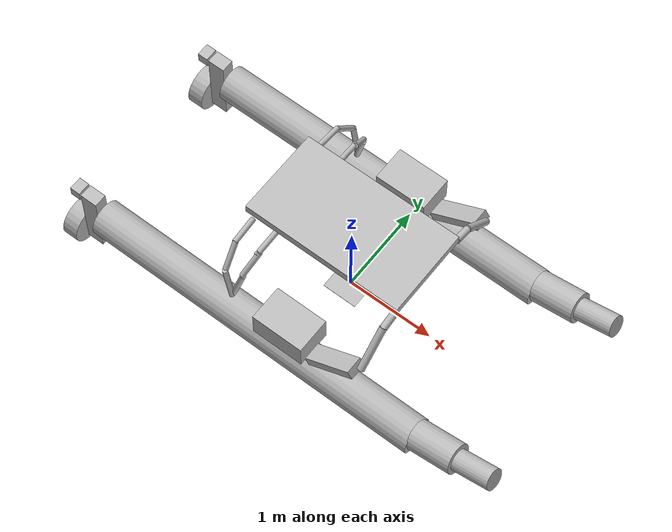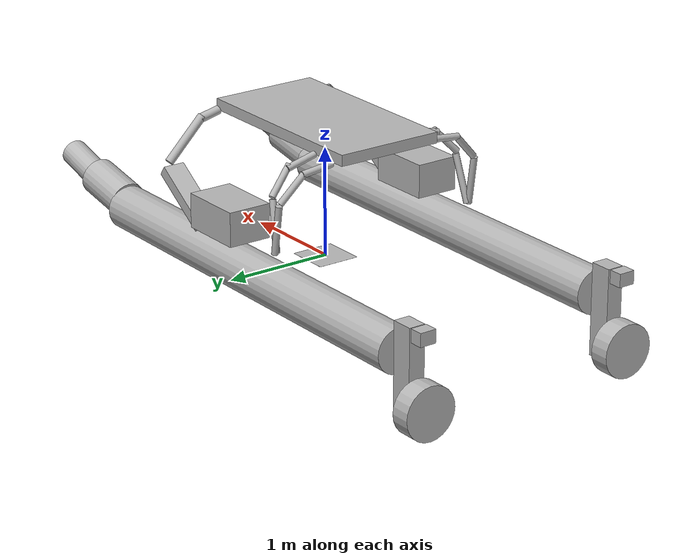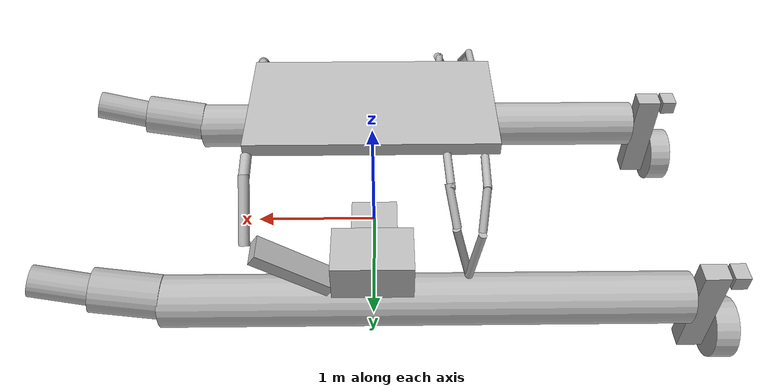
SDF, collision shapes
<sdf version="1.7">
 <model name="QR_wamv">
  <link name="wamv/base_link">
   <inertial>
    <pose>0 0 0.124229 0 -0 0</pose>
    <mass>227</mass>
    <inertia><ixx>181.42</ixx><ixy>0</ixy><ixz>0</ixz><iyy>408.203</iyy><iyz>0</iyz><izz>495.037</izz></inertia>
   </inertial>
   <visual name="wamv/base_link_fixed_joint_lump__left_battery_visual_visual_1">
    <pose>0 -0.03 0 0 -0 0</pose>
    <geometry><mesh><scale>1 1 1</scale><uri>model://battery/mesh/battery.dae</uri></mesh></geometry>
    <material><shader type="pixel"/></material>
   </visual>
   <visual name="wamv/base_link_fixed_joint_lump__right_battery_visual_visual_2">
    <pose>0 -2.03 0 0 -0 0</pose>
    <geometry><mesh><scale>1 1 1</scale><uri>model://battery/mesh/battery.dae</uri></mesh></geometry>
    <material><shader type="pixel"/></material>
   </visual>
   <visual name="wamv/base_link_fixed_joint_lump__wamv/dummy_link_visual">
    <geometry>
     <mesh>
      <scale>1 1 1</scale>
      <uri>/home/grant/vrx_ws/src/adept-vrx/wamv_description/models/WAM-V-Base/mesh/WAM-V-Base.dae</uri>
     </mesh>
    </geometry>
    <material><shader type="pixel"/></material>
   </visual>
   <visual name="wamv/base_link_fixed_joint_lump__qrcode1_visual_1">
    <pose>-.4 0 1.3 0 0 0</pose>
    <geometry><plane><normal>0 0 1</normal><size>.4 .4</size></plane></geometry>
    <material>
     <script>
      <uri>/home/grant/vrx_ws/src/adept-vrx/wamv_description/materials/scripts/gazebo.material</uri>
      <name>Gazebo/Aruco129</name>
     </script>
     <shader type="pixel"/>
    </material>
    <cast_shadows>0</cast_shadows>
   </visual>
   <visual name="wamv/base_link_fixed_joint_lump__qrcode2_visual_2">
    <pose>.2 0 1.3 0 0 0</pose>
    <geometry><plane><normal>0 0 1</normal><size>.2 .2</size></plane></geometry>
    <material>
     <script>
      <uri>/home/grant/vrx_ws/src/adept-vrx/wamv_description/materials/scripts/gazebo.material</uri>
      <name>Gazebo/Aruco72</name>
     </script>
     <shader type="pixel"/>
    </material>
    <cast_shadows>0</cast_shadows>
   </visual>
   <collision name="wamv/base_link_fixed_joint_lump__qrcode2_collision_28">
    <geometry><plane><normal>0 0 1</normal><size>.2 .2</size></plane></geometry>
    <surface>
     <friction>
      <ode><mu>1</mu><mu2>1</mu2><fdir1>0 0 0</fdir1><slip1>0</slip1><slip2>0</slip2></ode>
      <torsional>
       <coefficient>1</coefficient>
       <patch_radius>0</patch_radius>
       <surface_radius>0</surface_radius>
       <use_patch_radius>1</use_patch_radius>
       <ode><slip>0</slip></ode>
      </torsional>
     </friction>
     <bounce><restitution_coefficient>0</restitution_coefficient><threshold>1e+06</threshold></bounce>
     <contact>
      <collide_without_contact>0</collide_without_contact>
      <collide_without_contact_bitmask>1</collide_without_contact_bitmask>
      <collide_bitmask>1</collide_bitmask>
      <ode>
       <soft_cfm>0</soft_cfm>
       <soft_erp>0.2</soft_erp>
       <kp>1e+13</kp>
       <kd>1</kd>
       <max_vel>0.01</max_vel>
       <min_depth>0</min_depth>
      </ode>
      <bullet>
       <split_impulse>1</split_impulse>
       <split_impulse_penetration_threshold>-0.01</split_impulse_penetration_threshold>
       <soft_cfm>0</soft_cfm>
       <soft_erp>0.2</soft_erp>
       <kp>1e+13</kp>
       <kd>1</kd>
      </bullet>
     </contact>
    </surface>
   </collision>
   <collision name="wamv/base_link_fixed_joint_lump__qrcode1_collision_27">
    <geometry><plane><normal>0 0 1</normal><size>.4 .4</size></plane></geometry>
    <surface>
     <friction>
      <ode><mu>1</mu><mu2>1</mu2><fdir1>0 0 0</fdir1><slip1>0</slip1><slip2>0</slip2></ode>
      <torsional>
       <coefficient>1</coefficient>
       <patch_radius>0</patch_radius>
       <surface_radius>0</surface_radius>
       <use_patch_radius>1</use_patch_radius>
       <ode><slip>0</slip></ode>
      </torsional>
     </friction>
     <bounce><restitution_coefficient>0</restitution_coefficient><threshold>1e+06</threshold></bounce>
     <contact>
      <collide_without_contact>0</collide_without_contact>
      <collide_without_contact_bitmask>1</collide_without_contact_bitmask>
      <collide_bitmask>1</collide_bitmask>
      <ode>
       <soft_cfm>0</soft_cfm>
       <soft_erp>0.2</soft_erp>
       <kp>1e+13</kp>
       <kd>1</kd>
       <max_vel>0.01</max_vel>
       <min_depth>0</min_depth>
      </ode>
      <bullet>
       <split_impulse>1</split_impulse>
       <split_impulse_penetration_threshold>-0.01</split_impulse_penetration_threshold>
       <soft_cfm>0</soft_cfm>
       <soft_erp>0.2</soft_erp>
       <kp>1e+13</kp>
       <kd>1</kd>
      </bullet>
     </contact>
    </surface>
   </collision>
   <collision name="wamv/base_link_fixed_joint_lump__left_float_collision">
    <pose>-0.4 1.03 0.2 3.14159 1.57079 3.14159</pose>
    <geometry><cylinder><radius>0.2</radius><length>4</length></cylinder></geometry>
    <surface>
     <friction>
      <ode><mu>1</mu><mu2>1</mu2><fdir1>0 0 0</fdir1><slip1>0</slip1><slip2>0</slip2></ode>
      <torsional>
       <coefficient>1</coefficient>
       <patch_radius>0</patch_radius>
       <surface_radius>0</surface_radius>
       <use_patch_radius>1</use_patch_radius>
       <ode><slip>0</slip></ode>
      </torsional>
     </friction>
     <bounce><restitution_coefficient>0</restitution_coefficient><threshold>1e+06</threshold></bounce>
     <contact>
      <collide_without_contact>0</collide_without_contact>
      <collide_without_contact_bitmask>1</collide_without_contact_bitmask>
      <collide_bitmask>1</collide_bitmask>
      <ode>
       <soft_cfm>0</soft_cfm>
       <soft_erp>0.2</soft_erp>
       <kp>1e+13</kp>
       <kd>1</kd>
       <max_vel>0.01</max_vel>
       <min_depth>0</min_depth>
      </ode>
      <bullet>
       <split_impulse>1</split_impulse>
       <split_impulse_penetration_threshold>-0.01</split_impulse_penetration_threshold>
       <soft_cfm>0</soft_cfm>
       <soft_erp>0.2</soft_erp>
       <kp>1e+13</kp>
       <kd>1</kd>
      </bullet>
     </contact>
    </surface>
   </collision>
   <collision name="wamv/base_link_fixed_joint_lump__left_front_float_collision_2">
    <pose>2.3 1.03 0.4 0 1.3 0</pose>
    <geometry><cylinder><radius>0.12</radius><length>0.45</length></cylinder></geometry>
    <surface>
     <friction>
      <ode><mu>1</mu><mu2>1</mu2><fdir1>0 0 0</fdir1><slip1>0</slip1><slip2>0</slip2></ode>
      <torsional>
       <coefficient>1</coefficient>
       <patch_radius>0</patch_radius>
       <surface_radius>0</surface_radius>
       <use_patch_radius>1</use_patch_radius>
       <ode><slip>0</slip></ode>
      </torsional>
     </friction>
     <bounce><restitution_coefficient>0</restitution_coefficient><threshold>1e+06</threshold></bounce>
     <contact>
      <collide_without_contact>0</collide_without_contact>
      <collide_without_contact_bitmask>1</collide_without_contact_bitmask>
      <collide_bitmask>1</collide_bitmask>
      <ode>
       <soft_cfm>0</soft_cfm>
       <soft_erp>0.2</soft_erp>
       <kp>1e+13</kp>
       <kd>1</kd>
       <max_vel>0.01</max_vel>
       <min_depth>0</min_depth>
      </ode>
      <bullet>
       <split_impulse>1</split_impulse>
       <split_impulse_penetration_threshold>-0.01</split_impulse_penetration_threshold>
       <soft_cfm>0</soft_cfm>
       <soft_erp>0.2</soft_erp>
       <kp>1e+13</kp>
       <kd>1</kd>
      </bullet>
     </contact>
    </surface>
   </collision>
   <collision name="wamv/base_link_fixed_joint_lump__front_left_beam_upper_collision_4">
    <pose>0.9 0.6 1.18 1.35 -0 0</pose>
    <geometry><cylinder><radius>0.04</radius><length>0.2</length></cylinder></geometry>
    <surface>
     <friction>
      <ode><mu>1</mu><mu2>1</mu2><fdir1>0 0 0</fdir1><slip1>0</slip1><slip2>0</slip2></ode>
      <torsional>
       <coefficient>1</coefficient>
       <patch_radius>0</patch_radius>
       <surface_radius>0</surface_radius>
       <use_patch_radius>1</use_patch_radius>
       <ode><slip>0</slip></ode>
      </torsional>
     </friction>
     <bounce><restitution_coefficient>0</restitution_coefficient><threshold>1e+06</threshold></bounce>
     <contact>
      <collide_without_contact>0</collide_without_contact>
      <collide_without_contact_bitmask>1</collide_without_contact_bitmask>
      <collide_bitmask>1</collide_bitmask>
      <ode>
       <soft_cfm>0</soft_cfm>
       <soft_erp>0.2</soft_erp>
       <kp>1e+13</kp>
       <kd>1</kd>
       <max_vel>0.01</max_vel>
       <min_depth>0</min_depth>
      </ode>
      <bullet>
       <split_impulse>1</split_impulse>
       <split_impulse_penetration_threshold>-0.01</split_impulse_penetration_threshold>
       <soft_cfm>0</soft_cfm>
       <soft_erp>0.2</soft_erp>
       <kp>1e+13</kp>
       <kd>1</kd>
      </bullet>
     </contact>
    </surface>
   </collision>
   <collision name="wamv/base_link_fixed_joint_lump__mid_right_beam_lower_collision_17">
    <pose>-0.65 -0.99 0.7 -0.1 0.25 0</pose>
    <geometry><cylinder><radius>0.03</radius><length>0.45</length></cylinder></geometry>
    <surface>
     <friction>
      <ode><mu>1</mu><mu2>1</mu2><fdir1>0 0 0</fdir1><slip1>0</slip1><slip2>0</slip2></ode>
      <torsional>
       <coefficient>1</coefficient>
       <patch_radius>0</patch_radius>
       <surface_radius>0</surface_radius>
       <use_patch_radius>1</use_patch_radius>
       <ode><slip>0</slip></ode>
      </torsional>
     </friction>
     <bounce><restitution_coefficient>0</restitution_coefficient><threshold>1e+06</threshold></bounce>
     <contact>
      <collide_without_contact>0</collide_without_contact>
      <collide_without_contact_bitmask>1</collide_without_contact_bitmask>
      <collide_bitmask>1</collide_bitmask>
      <ode>
       <soft_cfm>0</soft_cfm>
       <soft_erp>0.2</soft_erp>
       <kp>1e+13</kp>
       <kd>1</kd>
       <max_vel>0.01</max_vel>
       <min_depth>0</min_depth>
      </ode>
      <bullet>
       <split_impulse>1</split_impulse>
       <split_impulse_penetration_threshold>-0.01</split_impulse_penetration_threshold>
       <soft_cfm>0</soft_cfm>
       <soft_erp>0.2</soft_erp>
       <kp>1e+13</kp>
       <kd>1</kd>
      </bullet>
     </contact>
    </surface>
   </collision>
   <collision name="wamv/base_link_fixed_joint_lump__mid_left_beam_lower_collision_5">
    <pose>-0.65 0.99 0.7 0.1 0.25 0</pose>
    <geometry><cylinder><radius>0.03</radius><length>0.45</length></cylinder></geometry>
    <surface>
     <friction>
      <ode><mu>1</mu><mu2>1</mu2><fdir1>0 0 0</fdir1><slip1>0</slip1><slip2>0</slip2></ode>
      <torsional>
       <coefficient>1</coefficient>
       <patch_radius>0</patch_radius>
       <surface_radius>0</surface_radius>
       <use_patch_radius>1</use_patch_radius>
       <ode><slip>0</slip></ode>
      </torsional>
     </friction>
     <bounce><restitution_coefficient>0</restitution_coefficient><threshold>1e+06</threshold></bounce>
     <contact>
      <collide_without_contact>0</collide_without_contact>
      <collide_without_contact_bitmask>1</collide_without_contact_bitmask>
      <collide_bitmask>1</collide_bitmask>
      <ode>
       <soft_cfm>0</soft_cfm>
       <soft_erp>0.2</soft_erp>
       <kp>1e+13</kp>
       <kd>1</kd>
       <max_vel>0.01</max_vel>
       <min_depth>0</min_depth>
      </ode>
      <bullet>
       <split_impulse>1</split_impulse>
       <split_impulse_penetration_threshold>-0.01</split_impulse_penetration_threshold>
       <soft_cfm>0</soft_cfm>
       <soft_erp>0.2</soft_erp>
       <kp>1e+13</kp>
       <kd>1</kd>
      </bullet>
     </contact>
    </surface>
   </collision>
   <collision name="wamv/base_link_fixed_joint_lump__right_joint_collision_23">
    <pose>0.58 -1.03 0.6 0 -0.6 0</pose>
    <geometry><box><size>0.65 0.2 0.1</size></box></geometry>
    <surface>
     <friction>
      <ode><mu>1</mu><mu2>1</mu2><fdir1>0 0 0</fdir1><slip1>0</slip1><slip2>0</slip2></ode>
      <torsional>
       <coefficient>1</coefficient>
       <patch_radius>0</patch_radius>
       <surface_radius>0</surface_radius>
       <use_patch_radius>1</use_patch_radius>
       <ode><slip>0</slip></ode>
      </torsional>
     </friction>
     <bounce><restitution_coefficient>0</restitution_coefficient><threshold>1e+06</threshold></bounce>
     <contact>
      <collide_without_contact>0</collide_without_contact>
      <collide_without_contact_bitmask>1</collide_without_contact_bitmask>
      <collide_bitmask>1</collide_bitmask>
      <ode>
       <soft_cfm>0</soft_cfm>
       <soft_erp>0.2</soft_erp>
       <kp>1e+13</kp>
       <kd>1</kd>
       <max_vel>0.01</max_vel>
       <min_depth>0</min_depth>
      </ode>
      <bullet>
       <split_impulse>1</split_impulse>
       <split_impulse_penetration_threshold>-0.01</split_impulse_penetration_threshold>
       <soft_cfm>0</soft_cfm>
       <soft_erp>0.2</soft_erp>
       <kp>1e+13</kp>
       <kd>1</kd>
      </bullet>
     </contact>
    </surface>
   </collision>
   <collision name="wamv/base_link_fixed_joint_lump__mid_left_beam_upper_collision_7">
    <pose>-0.55 0.65 1.17 1.35 0.25 0</pose>
    <geometry><cylinder><radius>0.03</radius><length>0.3</length></cylinder></geometry>
    <surface>
     <friction>
      <ode><mu>1</mu><mu2>1</mu2><fdir1>0 0 0</fdir1><slip1>0</slip1><slip2>0</slip2></ode>
      <torsional>
       <coefficient>1</coefficient>
       <patch_radius>0</patch_radius>
       <surface_radius>0</surface_radius>
       <use_patch_radius>1</use_patch_radius>
       <ode><slip>0</slip></ode>
      </torsional>
     </friction>
     <bounce><restitution_coefficient>0</restitution_coefficient><threshold>1e+06</threshold></bounce>
     <contact>
      <collide_without_contact>0</collide_without_contact>
      <collide_without_contact_bitmask>1</collide_without_contact_bitmask>
      <collide_bitmask>1</collide_bitmask>
      <ode>
       <soft_cfm>0</soft_cfm>
       <soft_erp>0.2</soft_erp>
       <kp>1e+13</kp>
       <kd>1</kd>
       <max_vel>0.01</max_vel>
       <min_depth>0</min_depth>
      </ode>
      <bullet>
       <split_impulse>1</split_impulse>
       <split_impulse_penetration_threshold>-0.01</split_impulse_penetration_threshold>
       <soft_cfm>0</soft_cfm>
       <soft_erp>0.2</soft_erp>
       <kp>1e+13</kp>
       <kd>1</kd>
      </bullet>
     </contact>
    </surface>
   </collision>
   <collision name="wamv/base_link_fixed_joint_lump__left_battery_collision_collision_25">
    <pose>0 1 0.6 0 -0 0</pose>
    <geometry><box><size>0.6 0.4 0.31</size></box></geometry>
    <surface>
     <friction>
      <ode><mu>1</mu><mu2>1</mu2><fdir1>0 0 0</fdir1><slip1>0</slip1><slip2>0</slip2></ode>
      <torsional>
       <coefficient>1</coefficient>
       <patch_radius>0</patch_radius>
       <surface_radius>0</surface_radius>
       <use_patch_radius>1</use_patch_radius>
       <ode><slip>0</slip></ode>
      </torsional>
     </friction>
     <bounce><restitution_coefficient>0</restitution_coefficient><threshold>1e+06</threshold></bounce>
     <contact>
      <collide_without_contact>0</collide_without_contact>
      <collide_without_contact_bitmask>1</collide_without_contact_bitmask>
      <collide_bitmask>1</collide_bitmask>
      <ode>
       <soft_cfm>0</soft_cfm>
       <soft_erp>0.2</soft_erp>
       <kp>1e+13</kp>
       <kd>1</kd>
       <max_vel>0.01</max_vel>
       <min_depth>0</min_depth>
      </ode>
      <bullet>
       <split_impulse>1</split_impulse>
       <split_impulse_penetration_threshold>-0.01</split_impulse_penetration_threshold>
       <soft_cfm>0</soft_cfm>
       <soft_erp>0.2</soft_erp>
       <kp>1e+13</kp>
       <kd>1</kd>
      </bullet>
     </contact>
    </surface>
   </collision>
   <collision name="wamv/base_link_fixed_joint_lump__left_joint_collision_11">
    <pose>0.58 1.03 0.6 0 -0.6 0</pose>
    <geometry><box><size>0.65 0.2 0.1</size></box></geometry>
    <surface>
     <friction>
      <ode><mu>1</mu><mu2>1</mu2><fdir1>0 0 0</fdir1><slip1>0</slip1><slip2>0</slip2></ode>
      <torsional>
       <coefficient>1</coefficient>
       <patch_radius>0</patch_radius>
       <surface_radius>0</surface_radius>
       <use_patch_radius>1</use_patch_radius>
       <ode><slip>0</slip></ode>
      </torsional>
     </friction>
     <bounce><restitution_coefficient>0</restitution_coefficient><threshold>1e+06</threshold></bounce>
     <contact>
      <collide_without_contact>0</collide_without_contact>
      <collide_without_contact_bitmask>1</collide_without_contact_bitmask>
      <collide_bitmask>1</collide_bitmask>
      <ode>
       <soft_cfm>0</soft_cfm>
       <soft_erp>0.2</soft_erp>
       <kp>1e+13</kp>
       <kd>1</kd>
       <max_vel>0.01</max_vel>
       <min_depth>0</min_depth>
      </ode>
      <bullet>
       <split_impulse>1</split_impulse>
       <split_impulse_penetration_threshold>-0.01</split_impulse_penetration_threshold>
       <soft_cfm>0</soft_cfm>
       <soft_erp>0.2</soft_erp>
       <kp>1e+13</kp>
       <kd>1</kd>
      </bullet>
     </contact>
    </surface>
   </collision>
   <collision name="wamv/base_link_fixed_joint_lump__rear_right_beam_lower_collision_20">
    <pose>-0.74 -1.03 0.7 0 -0.15 0</pose>
    <geometry><cylinder><radius>0.03</radius><length>0.45</length></cylinder></geometry>
    <surface>
     <friction>
      <ode><mu>1</mu><mu2>1</mu2><fdir1>0 0 0</fdir1><slip1>0</slip1><slip2>0</slip2></ode>
      <torsional>
       <coefficient>1</coefficient>
       <patch_radius>0</patch_radius>
       <surface_radius>0</surface_radius>
       <use_patch_radius>1</use_patch_radius>
       <ode><slip>0</slip></ode>
      </torsional>
     </friction>
     <bounce><restitution_coefficient>0</restitution_coefficient><threshold>1e+06</threshold></bounce>
     <contact>
      <collide_without_contact>0</collide_without_contact>
      <collide_without_contact_bitmask>1</collide_without_contact_bitmask>
      <collide_bitmask>1</collide_bitmask>
      <ode>
       <soft_cfm>0</soft_cfm>
       <soft_erp>0.2</soft_erp>
       <kp>1e+13</kp>
       <kd>1</kd>
       <max_vel>0.01</max_vel>
       <min_depth>0</min_depth>
      </ode>
      <bullet>
       <split_impulse>1</split_impulse>
       <split_impulse_penetration_threshold>-0.01</split_impulse_penetration_threshold>
       <soft_cfm>0</soft_cfm>
       <soft_erp>0.2</soft_erp>
       <kp>1e+13</kp>
       <kd>1</kd>
      </bullet>
     </contact>
    </surface>
   </collision>
   <collision name="wamv/base_link_fixed_joint_lump__left_mid_float_collision_1">
    <pose>1.85 1.03 0.3 0 1.38 0</pose>
    <geometry><cylinder><radius>0.17</radius><length>0.5</length></cylinder></geometry>
    <surface>
     <friction>
      <ode><mu>1</mu><mu2>1</mu2><fdir1>0 0 0</fdir1><slip1>0</slip1><slip2>0</slip2></ode>
      <torsional>
       <coefficient>1</coefficient>
       <patch_radius>0</patch_radius>
       <surface_radius>0</surface_radius>
       <use_patch_radius>1</use_patch_radius>
       <ode><slip>0</slip></ode>
      </torsional>
     </friction>
     <bounce><restitution_coefficient>0</restitution_coefficient><threshold>1e+06</threshold></bounce>
     <contact>
      <collide_without_contact>0</collide_without_contact>
      <collide_without_contact_bitmask>1</collide_without_contact_bitmask>
      <collide_bitmask>1</collide_bitmask>
      <ode>
       <soft_cfm>0</soft_cfm>
       <soft_erp>0.2</soft_erp>
       <kp>1e+13</kp>
       <kd>1</kd>
       <max_vel>0.01</max_vel>
       <min_depth>0</min_depth>
      </ode>
      <bullet>
       <split_impulse>1</split_impulse>
       <split_impulse_penetration_threshold>-0.01</split_impulse_penetration_threshold>
       <soft_cfm>0</soft_cfm>
       <soft_erp>0.2</soft_erp>
       <kp>1e+13</kp>
       <kd>1</kd>
      </bullet>
     </contact>
    </surface>
   </collision>
   <collision name="wamv/base_link_fixed_joint_lump__right_battery_collision_collision_26">
    <pose>0 -1 0.6 0 -0 0</pose>
    <geometry><box><size>0.6 0.4 0.31</size></box></geometry>
    <surface>
     <friction>
      <ode><mu>1</mu><mu2>1</mu2><fdir1>0 0 0</fdir1><slip1>0</slip1><slip2>0</slip2></ode>
      <torsional>
       <coefficient>1</coefficient>
       <patch_radius>0</patch_radius>
       <surface_radius>0</surface_radius>
       <use_patch_radius>1</use_patch_radius>
       <ode><slip>0</slip></ode>
      </torsional>
     </friction>
     <bounce><restitution_coefficient>0</restitution_coefficient><threshold>1e+06</threshold></bounce>
     <contact>
      <collide_without_contact>0</collide_without_contact>
      <collide_without_contact_bitmask>1</collide_without_contact_bitmask>
      <collide_bitmask>1</collide_bitmask>
      <ode>
       <soft_cfm>0</soft_cfm>
       <soft_erp>0.2</soft_erp>
       <kp>1e+13</kp>
       <kd>1</kd>
       <max_vel>0.01</max_vel>
       <min_depth>0</min_depth>
      </ode>
      <bullet>
       <split_impulse>1</split_impulse>
       <split_impulse_penetration_threshold>-0.01</split_impulse_penetration_threshold>
       <soft_cfm>0</soft_cfm>
       <soft_erp>0.2</soft_erp>
       <kp>1e+13</kp>
       <kd>1</kd>
      </bullet>
     </contact>
    </surface>
   </collision>
   <collision name="wamv/base_link_fixed_joint_lump__rear_left_beam_lower_collision_8">
    <pose>-0.74 1.03 0.7 0 -0.15 0</pose>
    <geometry><cylinder><radius>0.03</radius><length>0.45</length></cylinder></geometry>
    <surface>
     <friction>
      <ode><mu>1</mu><mu2>1</mu2><fdir1>0 0 0</fdir1><slip1>0</slip1><slip2>0</slip2></ode>
      <torsional>
       <coefficient>1</coefficient>
       <patch_radius>0</patch_radius>
       <surface_radius>0</surface_radius>
       <use_patch_radius>1</use_patch_radius>
       <ode><slip>0</slip></ode>
      </torsional>
     </friction>
     <bounce><restitution_coefficient>0</restitution_coefficient><threshold>1e+06</threshold></bounce>
     <contact>
      <collide_without_contact>0</collide_without_contact>
      <collide_without_contact_bitmask>1</collide_without_contact_bitmask>
      <collide_bitmask>1</collide_bitmask>
      <ode>
       <soft_cfm>0</soft_cfm>
       <soft_erp>0.2</soft_erp>
       <kp>1e+13</kp>
       <kd>1</kd>
       <max_vel>0.01</max_vel>
       <min_depth>0</min_depth>
      </ode>
      <bullet>
       <split_impulse>1</split_impulse>
       <split_impulse_penetration_threshold>-0.01</split_impulse_penetration_threshold>
       <soft_cfm>0</soft_cfm>
       <soft_erp>0.2</soft_erp>
       <kp>1e+13</kp>
       <kd>1</kd>
      </bullet>
     </contact>
    </surface>
   </collision>
   <collision name="wamv/base_link_fixed_joint_lump__mid_left_beam_medium_collision_6">
    <pose>-0.57 0.87 1.05 0.75 0.25 0</pose>
    <geometry><cylinder><radius>0.03</radius><length>0.32</length></cylinder></geometry>
    <surface>
     <friction>
      <ode><mu>1</mu><mu2>1</mu2><fdir1>0 0 0</fdir1><slip1>0</slip1><slip2>0</slip2></ode>
      <torsional>
       <coefficient>1</coefficient>
       <patch_radius>0</patch_radius>
       <surface_radius>0</surface_radius>
       <use_patch_radius>1</use_patch_radius>
       <ode><slip>0</slip></ode>
      </torsional>
     </friction>
     <bounce><restitution_coefficient>0</restitution_coefficient><threshold>1e+06</threshold></bounce>
     <contact>
      <collide_without_contact>0</collide_without_contact>
      <collide_without_contact_bitmask>1</collide_without_contact_bitmask>
      <collide_bitmask>1</collide_bitmask>
      <ode>
       <soft_cfm>0</soft_cfm>
       <soft_erp>0.2</soft_erp>
       <kp>1e+13</kp>
       <kd>1</kd>
       <max_vel>0.01</max_vel>
       <min_depth>0</min_depth>
      </ode>
      <bullet>
       <split_impulse>1</split_impulse>
       <split_impulse_penetration_threshold>-0.01</split_impulse_penetration_threshold>
       <soft_cfm>0</soft_cfm>
       <soft_erp>0.2</soft_erp>
       <kp>1e+13</kp>
       <kd>1</kd>
      </bullet>
     </contact>
    </surface>
   </collision>
   <collision name="wamv/base_link_fixed_joint_lump__rear_left_beam_medium_collision_9">
    <pose>-0.79 0.91 1.05 0.75 -0.15 -0</pose>
    <geometry><cylinder><radius>0.03</radius><length>0.32</length></cylinder></geometry>
    <surface>
     <friction>
      <ode><mu>1</mu><mu2>1</mu2><fdir1>0 0 0</fdir1><slip1>0</slip1><slip2>0</slip2></ode>
      <torsional>
       <coefficient>1</coefficient>
       <patch_radius>0</patch_radius>
       <surface_radius>0</surface_radius>
       <use_patch_radius>1</use_patch_radius>
       <ode><slip>0</slip></ode>
      </torsional>
     </friction>
     <bounce><restitution_coefficient>0</restitution_coefficient><threshold>1e+06</threshold></bounce>
     <contact>
      <collide_without_contact>0</collide_without_contact>
      <collide_without_contact_bitmask>1</collide_without_contact_bitmask>
      <collide_bitmask>1</collide_bitmask>
      <ode>
       <soft_cfm>0</soft_cfm>
       <soft_erp>0.2</soft_erp>
       <kp>1e+13</kp>
       <kd>1</kd>
       <max_vel>0.01</max_vel>
       <min_depth>0</min_depth>
      </ode>
      <bullet>
       <split_impulse>1</split_impulse>
       <split_impulse_penetration_threshold>-0.01</split_impulse_penetration_threshold>
       <soft_cfm>0</soft_cfm>
       <soft_erp>0.2</soft_erp>
       <kp>1e+13</kp>
       <kd>1</kd>
      </bullet>
     </contact>
    </surface>
   </collision>
   <collision name="wamv/base_link_fixed_joint_lump__right_mid_float_collision_13">
    <pose>1.85 -1.03 0.3 0 1.38 0</pose>
    <geometry><cylinder><radius>0.17</radius><length>0.5</length></cylinder></geometry>
    <surface>
     <friction>
      <ode><mu>1</mu><mu2>1</mu2><fdir1>0 0 0</fdir1><slip1>0</slip1><slip2>0</slip2></ode>
      <torsional>
       <coefficient>1</coefficient>
       <patch_radius>0</patch_radius>
       <surface_radius>0</surface_radius>
       <use_patch_radius>1</use_patch_radius>
       <ode><slip>0</slip></ode>
      </torsional>
     </friction>
     <bounce><restitution_coefficient>0</restitution_coefficient><threshold>1e+06</threshold></bounce>
     <contact>
      <collide_without_contact>0</collide_without_contact>
      <collide_without_contact_bitmask>1</collide_without_contact_bitmask>
      <collide_bitmask>1</collide_bitmask>
      <ode>
       <soft_cfm>0</soft_cfm>
       <soft_erp>0.2</soft_erp>
       <kp>1e+13</kp>
       <kd>1</kd>
       <max_vel>0.01</max_vel>
       <min_depth>0</min_depth>
      </ode>
      <bullet>
       <split_impulse>1</split_impulse>
       <split_impulse_penetration_threshold>-0.01</split_impulse_penetration_threshold>
       <soft_cfm>0</soft_cfm>
       <soft_erp>0.2</soft_erp>
       <kp>1e+13</kp>
       <kd>1</kd>
      </bullet>
     </contact>
    </surface>
   </collision>
   <collision name="wamv/base_link_fixed_joint_lump__front_left_beam_lower_collision_3">
    <pose>0.9 0.85 1 0.78 -0 0</pose>
    <geometry><cylinder><radius>0.04</radius><length>0.5</length></cylinder></geometry>
    <surface>
     <friction>
      <ode><mu>1</mu><mu2>1</mu2><fdir1>0 0 0</fdir1><slip1>0</slip1><slip2>0</slip2></ode>
      <torsional>
       <coefficient>1</coefficient>
       <patch_radius>0</patch_radius>
       <surface_radius>0</surface_radius>
       <use_patch_radius>1</use_patch_radius>
       <ode><slip>0</slip></ode>
      </torsional>
     </friction>
     <bounce><restitution_coefficient>0</restitution_coefficient><threshold>1e+06</threshold></bounce>
     <contact>
      <collide_without_contact>0</collide_without_contact>
      <collide_without_contact_bitmask>1</collide_without_contact_bitmask>
      <collide_bitmask>1</collide_bitmask>
      <ode>
       <soft_cfm>0</soft_cfm>
       <soft_erp>0.2</soft_erp>
       <kp>1e+13</kp>
       <kd>1</kd>
       <max_vel>0.01</max_vel>
       <min_depth>0</min_depth>
      </ode>
      <bullet>
       <split_impulse>1</split_impulse>
       <split_impulse_penetration_threshold>-0.01</split_impulse_penetration_threshold>
       <soft_cfm>0</soft_cfm>
       <soft_erp>0.2</soft_erp>
       <kp>1e+13</kp>
       <kd>1</kd>
      </bullet>
     </contact>
    </surface>
   </collision>
   <collision name="wamv/base_link_fixed_joint_lump__right_front_float_collision_14">
    <pose>2.3 -1.03 0.4 0 1.3 0</pose>
    <geometry><cylinder><radius>0.12</radius><length>0.45</length></cylinder></geometry>
    <surface>
     <friction>
      <ode><mu>1</mu><mu2>1</mu2><fdir1>0 0 0</fdir1><slip1>0</slip1><slip2>0</slip2></ode>
      <torsional>
       <coefficient>1</coefficient>
       <patch_radius>0</patch_radius>
       <surface_radius>0</surface_radius>
       <use_patch_radius>1</use_patch_radius>
       <ode><slip>0</slip></ode>
      </torsional>
     </friction>
     <bounce><restitution_coefficient>0</restitution_coefficient><threshold>1e+06</threshold></bounce>
     <contact>
      <collide_without_contact>0</collide_without_contact>
      <collide_without_contact_bitmask>1</collide_without_contact_bitmask>
      <collide_bitmask>1</collide_bitmask>
      <ode>
       <soft_cfm>0</soft_cfm>
       <soft_erp>0.2</soft_erp>
       <kp>1e+13</kp>
       <kd>1</kd>
       <max_vel>0.01</max_vel>
       <min_depth>0</min_depth>
      </ode>
      <bullet>
       <split_impulse>1</split_impulse>
       <split_impulse_penetration_threshold>-0.01</split_impulse_penetration_threshold>
       <soft_cfm>0</soft_cfm>
       <soft_erp>0.2</soft_erp>
       <kp>1e+13</kp>
       <kd>1</kd>
      </bullet>
     </contact>
    </surface>
   </collision>
   <collision name="wamv/base_link_fixed_joint_lump__front_right_beam_lower_collision_15">
    <pose>0.9 -0.85 1 -0.78 0 0</pose>
    <geometry><cylinder><radius>0.04</radius><length>0.5</length></cylinder></geometry>
    <surface>
     <friction>
      <ode><mu>1</mu><mu2>1</mu2><fdir1>0 0 0</fdir1><slip1>0</slip1><slip2>0</slip2></ode>
      <torsional>
       <coefficient>1</coefficient>
       <patch_radius>0</patch_radius>
       <surface_radius>0</surface_radius>
       <use_patch_radius>1</use_patch_radius>
       <ode><slip>0</slip></ode>
      </torsional>
     </friction>
     <bounce><restitution_coefficient>0</restitution_coefficient><threshold>1e+06</threshold></bounce>
     <contact>
      <collide_without_contact>0</collide_without_contact>
      <collide_without_contact_bitmask>1</collide_without_contact_bitmask>
      <collide_bitmask>1</collide_bitmask>
      <ode>
       <soft_cfm>0</soft_cfm>
       <soft_erp>0.2</soft_erp>
       <kp>1e+13</kp>
       <kd>1</kd>
       <max_vel>0.01</max_vel>
       <min_depth>0</min_depth>
      </ode>
      <bullet>
       <split_impulse>1</split_impulse>
       <split_impulse_penetration_threshold>-0.01</split_impulse_penetration_threshold>
       <soft_cfm>0</soft_cfm>
       <soft_erp>0.2</soft_erp>
       <kp>1e+13</kp>
       <kd>1</kd>
      </bullet>
     </contact>
    </surface>
   </collision>
   <collision name="wamv/base_link_fixed_joint_lump__rear_right_beam_medium_collision_21">
    <pose>-0.79 -0.91 1.05 -0.75 -0.15 0</pose>
    <geometry><cylinder><radius>0.03</radius><length>0.32</length></cylinder></geometry>
    <surface>
     <friction>
      <ode><mu>1</mu><mu2>1</mu2><fdir1>0 0 0</fdir1><slip1>0</slip1><slip2>0</slip2></ode>
      <torsional>
       <coefficient>1</coefficient>
       <patch_radius>0</patch_radius>
       <surface_radius>0</surface_radius>
       <use_patch_radius>1</use_patch_radius>
       <ode><slip>0</slip></ode>
      </torsional>
     </friction>
     <bounce><restitution_coefficient>0</restitution_coefficient><threshold>1e+06</threshold></bounce>
     <contact>
      <collide_without_contact>0</collide_without_contact>
      <collide_without_contact_bitmask>1</collide_without_contact_bitmask>
      <collide_bitmask>1</collide_bitmask>
      <ode>
       <soft_cfm>0</soft_cfm>
       <soft_erp>0.2</soft_erp>
       <kp>1e+13</kp>
       <kd>1</kd>
       <max_vel>0.01</max_vel>
       <min_depth>0</min_depth>
      </ode>
      <bullet>
       <split_impulse>1</split_impulse>
       <split_impulse_penetration_threshold>-0.01</split_impulse_penetration_threshold>
       <soft_cfm>0</soft_cfm>
       <soft_erp>0.2</soft_erp>
       <kp>1e+13</kp>
       <kd>1</kd>
      </bullet>
     </contact>
    </surface>
   </collision>
   <collision name="wamv/base_link_fixed_joint_lump__top_base_collision_24">
    <pose>0 0 1.25 0 -0 0</pose>
    <geometry><box><size>1.85 1 0.1</size></box></geometry>
    <surface>
     <friction>
      <ode><mu>1</mu><mu2>1</mu2><fdir1>0 0 0</fdir1><slip1>0</slip1><slip2>0</slip2></ode>
      <torsional>
       <coefficient>1</coefficient>
       <patch_radius>0</patch_radius>
       <surface_radius>0</surface_radius>
       <use_patch_radius>1</use_patch_radius>
       <ode><slip>0</slip></ode>
      </torsional>
     </friction>
     <bounce><restitution_coefficient>0</restitution_coefficient><threshold>1e+06</threshold></bounce>
     <contact>
      <collide_without_contact>0</collide_without_contact>
      <collide_without_contact_bitmask>1</collide_without_contact_bitmask>
      <collide_bitmask>1</collide_bitmask>
      <ode>
       <soft_cfm>0</soft_cfm>
       <soft_erp>0.2</soft_erp>
       <kp>1e+13</kp>
       <kd>1</kd>
       <max_vel>0.01</max_vel>
       <min_depth>0</min_depth>
      </ode>
      <bullet>
       <split_impulse>1</split_impulse>
       <split_impulse_penetration_threshold>-0.01</split_impulse_penetration_threshold>
       <soft_cfm>0</soft_cfm>
       <soft_erp>0.2</soft_erp>
       <kp>1e+13</kp>
       <kd>1</kd>
      </bullet>
     </contact>
    </surface>
   </collision>
   <collision name="wamv/base_link_fixed_joint_lump__rear_right_beam_upper_collision_22">
    <pose>-0.81 -0.67 1.18 -1.45 -0.15 0</pose>
    <geometry><cylinder><radius>0.03</radius><length>0.3</length></cylinder></geometry>
    <surface>
     <friction>
      <ode><mu>1</mu><mu2>1</mu2><fdir1>0 0 0</fdir1><slip1>0</slip1><slip2>0</slip2></ode>
      <torsional>
       <coefficient>1</coefficient>
       <patch_radius>0</patch_radius>
       <surface_radius>0</surface_radius>
       <use_patch_radius>1</use_patch_radius>
       <ode><slip>0</slip></ode>
      </torsional>
     </friction>
     <bounce><restitution_coefficient>0</restitution_coefficient><threshold>1e+06</threshold></bounce>
     <contact>
      <collide_without_contact>0</collide_without_contact>
      <collide_without_contact_bitmask>1</collide_without_contact_bitmask>
      <collide_bitmask>1</collide_bitmask>
      <ode>
       <soft_cfm>0</soft_cfm>
       <soft_erp>0.2</soft_erp>
       <kp>1e+13</kp>
       <kd>1</kd>
       <max_vel>0.01</max_vel>
       <min_depth>0</min_depth>
      </ode>
      <bullet>
       <split_impulse>1</split_impulse>
       <split_impulse_penetration_threshold>-0.01</split_impulse_penetration_threshold>
       <soft_cfm>0</soft_cfm>
       <soft_erp>0.2</soft_erp>
       <kp>1e+13</kp>
       <kd>1</kd>
      </bullet>
     </contact>
    </surface>
   </collision>
   <collision name="wamv/base_link_fixed_joint_lump__mid_right_beam_medium_collision_18">
    <pose>-0.57 -0.87 1.05 -0.75 0.25 0</pose>
    <geometry><cylinder><radius>0.03</radius><length>0.32</length></cylinder></geometry>
    <surface>
     <friction>
      <ode><mu>1</mu><mu2>1</mu2><fdir1>0 0 0</fdir1><slip1>0</slip1><slip2>0</slip2></ode>
      <torsional>
       <coefficient>1</coefficient>
       <patch_radius>0</patch_radius>
       <surface_radius>0</surface_radius>
       <use_patch_radius>1</use_patch_radius>
       <ode><slip>0</slip></ode>
      </torsional>
     </friction>
     <bounce><restitution_coefficient>0</restitution_coefficient><threshold>1e+06</threshold></bounce>
     <contact>
      <collide_without_contact>0</collide_without_contact>
      <collide_without_contact_bitmask>1</collide_without_contact_bitmask>
      <collide_bitmask>1</collide_bitmask>
      <ode>
       <soft_cfm>0</soft_cfm>
       <soft_erp>0.2</soft_erp>
       <kp>1e+13</kp>
       <kd>1</kd>
       <max_vel>0.01</max_vel>
       <min_depth>0</min_depth>
      </ode>
      <bullet>
       <split_impulse>1</split_impulse>
       <split_impulse_penetration_threshold>-0.01</split_impulse_penetration_threshold>
       <soft_cfm>0</soft_cfm>
       <soft_erp>0.2</soft_erp>
       <kp>1e+13</kp>
       <kd>1</kd>
      </bullet>
     </contact>
    </surface>
   </collision>
   <collision name="wamv/base_link_fixed_joint_lump__right_float_collision_12">
    <pose>-0.4 -1.03 0.2 3.14159 1.57079 3.14159</pose>
    <geometry><cylinder><radius>0.2</radius><length>4</length></cylinder></geometry>
    <surface>
     <friction>
      <ode><mu>1</mu><mu2>1</mu2><fdir1>0 0 0</fdir1><slip1>0</slip1><slip2>0</slip2></ode>
      <torsional>
       <coefficient>1</coefficient>
       <patch_radius>0</patch_radius>
       <surface_radius>0</surface_radius>
       <use_patch_radius>1</use_patch_radius>
       <ode><slip>0</slip></ode>
      </torsional>
     </friction>
     <bounce><restitution_coefficient>0</restitution_coefficient><threshold>1e+06</threshold></bounce>
     <contact>
      <collide_without_contact>0</collide_without_contact>
      <collide_without_contact_bitmask>1</collide_without_contact_bitmask>
      <collide_bitmask>1</collide_bitmask>
      <ode>
       <soft_cfm>0</soft_cfm>
       <soft_erp>0.2</soft_erp>
       <kp>1e+13</kp>
       <kd>1</kd>
       <max_vel>0.01</max_vel>
       <min_depth>0</min_depth>
      </ode>
      <bullet>
       <split_impulse>1</split_impulse>
       <split_impulse_penetration_threshold>-0.01</split_impulse_penetration_threshold>
       <soft_cfm>0</soft_cfm>
       <soft_erp>0.2</soft_erp>
       <kp>1e+13</kp>
       <kd>1</kd>
      </bullet>
     </contact>
    </surface>
   </collision>
   <collision name="wamv/base_link_fixed_joint_lump__front_right_beam_upper_collision_16">
    <pose>0.9 -0.6 1.18 -1.35 0 0</pose>
    <geometry><cylinder><radius>0.04</radius><length>0.2</length></cylinder></geometry>
    <surface>
     <friction>
      <ode><mu>1</mu><mu2>1</mu2><fdir1>0 0 0</fdir1><slip1>0</slip1><slip2>0</slip2></ode>
      <torsional>
       <coefficient>1</coefficient>
       <patch_radius>0</patch_radius>
       <surface_radius>0</surface_radius>
       <use_patch_radius>1</use_patch_radius>
       <ode><slip>0</slip></ode>
      </torsional>
     </friction>
     <bounce><restitution_coefficient>0</restitution_coefficient><threshold>1e+06</threshold></bounce>
     <contact>
      <collide_without_contact>0</collide_without_contact>
      <collide_without_contact_bitmask>1</collide_without_contact_bitmask>
      <collide_bitmask>1</collide_bitmask>
      <ode>
       <soft_cfm>0</soft_cfm>
       <soft_erp>0.2</soft_erp>
       <kp>1e+13</kp>
       <kd>1</kd>
       <max_vel>0.01</max_vel>
       <min_depth>0</min_depth>
      </ode>
      <bullet>
       <split_impulse>1</split_impulse>
       <split_impulse_penetration_threshold>-0.01</split_impulse_penetration_threshold>
       <soft_cfm>0</soft_cfm>
       <soft_erp>0.2</soft_erp>
       <kp>1e+13</kp>
       <kd>1</kd>
      </bullet>
     </contact>
    </surface>
   </collision>
   <collision name="wamv/base_link_fixed_joint_lump__rear_left_beam_upper_collision_10">
    <pose>-0.81 0.67 1.18 1.45 -0.15 0</pose>
    <geometry><cylinder><radius>0.03</radius><length>0.3</length></cylinder></geometry>
    <surface>
     <friction>
      <ode><mu>1</mu><mu2>1</mu2><fdir1>0 0 0</fdir1><slip1>0</slip1><slip2>0</slip2></ode>
      <torsional>
       <coefficient>1</coefficient>
       <patch_radius>0</patch_radius>
       <surface_radius>0</surface_radius>
       <use_patch_radius>1</use_patch_radius>
       <ode><slip>0</slip></ode>
      </torsional>
     </friction>
     <bounce><restitution_coefficient>0</restitution_coefficient><threshold>1e+06</threshold></bounce>
     <contact>
      <collide_without_contact>0</collide_without_contact>
      <collide_without_contact_bitmask>1</collide_without_contact_bitmask>
      <collide_bitmask>1</collide_bitmask>
      <ode>
       <soft_cfm>0</soft_cfm>
       <soft_erp>0.2</soft_erp>
       <kp>1e+13</kp>
       <kd>1</kd>
       <max_vel>0.01</max_vel>
       <min_depth>0</min_depth>
      </ode>
      <bullet>
       <split_impulse>1</split_impulse>
       <split_impulse_penetration_threshold>-0.01</split_impulse_penetration_threshold>
       <soft_cfm>0</soft_cfm>
       <soft_erp>0.2</soft_erp>
       <kp>1e+13</kp>
       <kd>1</kd>
      </bullet>
     </contact>
    </surface>
   </collision>
   <collision name="wamv/base_link_fixed_joint_lump__mid_right_beam_upper_collision_19">
    <pose>-0.55 -0.65 1.17 -1.35 0.25 0</pose>
    <geometry><cylinder><radius>0.03</radius><length>0.3</length></cylinder></geometry>
    <surface>
     <friction>
      <ode><mu>1</mu><mu2>1</mu2><fdir1>0 0 0</fdir1><slip1>0</slip1><slip2>0</slip2></ode>
      <torsional>
       <coefficient>1</coefficient>
       <patch_radius>0</patch_radius>
       <surface_radius>0</surface_radius>
       <use_patch_radius>1</use_patch_radius>
       <ode><slip>0</slip></ode>
      </torsional>
     </friction>
     <bounce><restitution_coefficient>0</restitution_coefficient><threshold>1e+06</threshold></bounce>
     <contact>
      <collide_without_contact>0</collide_without_contact>
      <collide_without_contact_bitmask>1</collide_without_contact_bitmask>
      <collide_bitmask>1</collide_bitmask>
      <ode>
       <soft_cfm>0</soft_cfm>
       <soft_erp>0.2</soft_erp>
       <kp>1e+13</kp>
       <kd>1</kd>
       <max_vel>0.01</max_vel>
       <min_depth>0</min_depth>
      </ode>
      <bullet>
       <split_impulse>1</split_impulse>
       <split_impulse_penetration_threshold>-0.01</split_impulse_penetration_threshold>
       <soft_cfm>0</soft_cfm>
       <soft_erp>0.2</soft_erp>
       <kp>1e+13</kp>
       <kd>1</kd>
      </bullet>
     </contact>
    </surface>
   </collision>
  </link>
  <link name="wamv/left_engine_link">
   <pose>-2.37378 1.02713 0.318237 0 -0 0</pose>
   <inertial>
    <mass>15</mass>
    <inertia>
     <ixx>0.889245</ixx>
     <ixy>0</ixy>
     <ixz>0</ixz>
     <iyy>0.911125</iyy>
     <iyz>0</iyz>
     <izz>0.078125</izz>
    </inertia>
   </inertial>
   <visual name="wamv/left_engine_link_visual">
    <geometry>
     <mesh>
      <scale>1 1 1</scale>
      <uri>/home/grant/vrx_ws/src/adept-vrx/wamv_description/models/engine/mesh/engine.dae</uri>
     </mesh>
    </geometry>
    <material><shader type="pixel"/></material>
   </visual>
   <collision name="wamv/left_engine_link_fixed_joint_lump__left_engine_rear_end_collision_collision_1">
    <pose>-0.34 0 0.12 0 -0 0</pose>
    <geometry><box><size>0.12 0.15 0.12</size></box></geometry>
    <surface>
     <friction>
      <ode><mu>1</mu><mu2>1</mu2><fdir1>0 0 0</fdir1><slip1>0</slip1><slip2>0</slip2></ode>
      <torsional>
       <coefficient>1</coefficient>
       <patch_radius>0</patch_radius>
       <surface_radius>0</surface_radius>
       <use_patch_radius>1</use_patch_radius>
       <ode><slip>0</slip></ode>
      </torsional>
     </friction>
     <bounce><restitution_coefficient>0</restitution_coefficient><threshold>1e+06</threshold></bounce>
     <contact>
      <collide_without_contact>0</collide_without_contact>
      <collide_without_contact_bitmask>1</collide_without_contact_bitmask>
      <collide_bitmask>1</collide_bitmask>
      <ode>
       <soft_cfm>0</soft_cfm>
       <soft_erp>0.2</soft_erp>
       <kp>1e+13</kp>
       <kd>1</kd>
       <max_vel>0.01</max_vel>
       <min_depth>0</min_depth>
      </ode>
      <bullet>
       <split_impulse>1</split_impulse>
       <split_impulse_penetration_threshold>-0.01</split_impulse_penetration_threshold>
       <soft_cfm>0</soft_cfm>
       <soft_erp>0.2</soft_erp>
       <kp>1e+13</kp>
       <kd>1</kd>
      </bullet>
     </contact>
    </surface>
   </collision>
   <collision name="wamv/left_engine_link_fixed_joint_lump__left_engine_vertical_axis_collision_collision">
    <pose>-0.16 0 -0.24 0 -0 0</pose>
    <geometry><box><size>0.2 0.15 0.83</size></box></geometry>
    <surface>
     <friction>
      <ode><mu>1</mu><mu2>1</mu2><fdir1>0 0 0</fdir1><slip1>0</slip1><slip2>0</slip2></ode>
      <torsional>
       <coefficient>1</coefficient>
       <patch_radius>0</patch_radius>
       <surface_radius>0</surface_radius>
       <use_patch_radius>1</use_patch_radius>
       <ode><slip>0</slip></ode>
      </torsional>
     </friction>
     <bounce><restitution_coefficient>0</restitution_coefficient><threshold>1e+06</threshold></bounce>
     <contact>
      <collide_without_contact>0</collide_without_contact>
      <collide_without_contact_bitmask>1</collide_without_contact_bitmask>
      <collide_bitmask>1</collide_bitmask>
      <ode>
       <soft_cfm>0</soft_cfm>
       <soft_erp>0.2</soft_erp>
       <kp>1e+13</kp>
       <kd>1</kd>
       <max_vel>0.01</max_vel>
       <min_depth>0</min_depth>
      </ode>
      <bullet>
       <split_impulse>1</split_impulse>
       <split_impulse_penetration_threshold>-0.01</split_impulse_penetration_threshold>
       <soft_cfm>0</soft_cfm>
       <soft_erp>0.2</soft_erp>
       <kp>1e+13</kp>
       <kd>1</kd>
      </bullet>
     </contact>
    </surface>
   </collision>
  </link>
  <link name="wamv/left_propeller_link">
   <pose>-2.65194 1.02713 -0.191134 0 -0 0</pose>
   <inertial>
    <mass>0.5</mass>
    <inertia><ixx>0.008545</ixx><ixy>0</ixy><ixz>0</ixz><iyy>0.008545</iyy><iyz>0</iyz><izz>0.0144</izz></inertia>
   </inertial>
   <visual name="wamv/left_propeller_link_visual">
    <geometry><mesh><scale>1 1 1</scale><uri>model://propeller/mesh/propeller.dae</uri></mesh></geometry>
   </visual>
   <collision name="wamv/left_propeller_link_fixed_joint_lump__left_propeller_collision_collision">
    <pose>-0.08 0 0 3.14159 1.57079 3.14159</pose>
    <geometry><cylinder><radius>0.24</radius><length>0.18</length></cylinder></geometry>
    <surface>
     <friction>
      <ode><mu>1</mu><mu2>1</mu2><fdir1>0 0 0</fdir1><slip1>0</slip1><slip2>0</slip2></ode>
      <torsional>
       <coefficient>1</coefficient>
       <patch_radius>0</patch_radius>
       <surface_radius>0</surface_radius>
       <use_patch_radius>1</use_patch_radius>
       <ode><slip>0</slip></ode>
      </torsional>
     </friction>
     <bounce><restitution_coefficient>0</restitution_coefficient><threshold>1e+06</threshold></bounce>
     <contact>
      <collide_without_contact>0</collide_without_contact>
      <collide_without_contact_bitmask>1</collide_without_contact_bitmask>
      <collide_bitmask>1</collide_bitmask>
      <ode>
       <soft_cfm>0</soft_cfm>
       <soft_erp>0.2</soft_erp>
       <kp>1e+13</kp>
       <kd>1</kd>
       <max_vel>0.01</max_vel>
       <min_depth>0</min_depth>
      </ode>
      <bullet>
       <split_impulse>1</split_impulse>
       <split_impulse_penetration_threshold>-0.01</split_impulse_penetration_threshold>
       <soft_cfm>0</soft_cfm>
       <soft_erp>0.2</soft_erp>
       <kp>1e+13</kp>
       <kd>1</kd>
      </bullet>
     </contact>
    </surface>
   </collision>
  </link>
  <link name="wamv/right_engine_link">
   <pose>-2.37378 -1.02713 0.318237 0 -0 0</pose>
   <inertial>
    <mass>15</mass>
    <inertia>
     <ixx>0.889245</ixx>
     <ixy>0</ixy>
     <ixz>0</ixz>
     <iyy>0.911125</iyy>
     <iyz>0</iyz>
     <izz>0.078125</izz>
    </inertia>
   </inertial>
   <visual name="wamv/right_engine_link_visual">
    <geometry>
     <mesh>
      <scale>1 1 1</scale>
      <uri>/home/grant/vrx_ws/src/adept-vrx/wamv_description/models/engine/mesh/engine.dae</uri>
     </mesh>
    </geometry>
    <material><shader type="pixel"/></material>
   </visual>
   <collision name="wamv/right_engine_link_fixed_joint_lump__right_engine_vertical_axis_collision_collision">
    <pose>-0.16 0 -0.24 0 -0 0</pose>
    <geometry><box><size>0.2 0.15 0.83</size></box></geometry>
    <surface>
     <friction>
      <ode><mu>1</mu><mu2>1</mu2><fdir1>0 0 0</fdir1><slip1>0</slip1><slip2>0</slip2></ode>
      <torsional>
       <coefficient>1</coefficient>
       <patch_radius>0</patch_radius>
       <surface_radius>0</surface_radius>
       <use_patch_radius>1</use_patch_radius>
       <ode><slip>0</slip></ode>
      </torsional>
     </friction>
     <bounce><restitution_coefficient>0</restitution_coefficient><threshold>1e+06</threshold></bounce>
     <contact>
      <collide_without_contact>0</collide_without_contact>
      <collide_without_contact_bitmask>1</collide_without_contact_bitmask>
      <collide_bitmask>1</collide_bitmask>
      <ode>
       <soft_cfm>0</soft_cfm>
       <soft_erp>0.2</soft_erp>
       <kp>1e+13</kp>
       <kd>1</kd>
       <max_vel>0.01</max_vel>
       <min_depth>0</min_depth>
      </ode>
      <bullet>
       <split_impulse>1</split_impulse>
       <split_impulse_penetration_threshold>-0.01</split_impulse_penetration_threshold>
       <soft_cfm>0</soft_cfm>
       <soft_erp>0.2</soft_erp>
       <kp>1e+13</kp>
       <kd>1</kd>
      </bullet>
     </contact>
    </surface>
   </collision>
   <collision name="wamv/right_engine_link_fixed_joint_lump__right_engine_rear_end_collision_collision_1">
    <pose>-0.34 0 0.12 0 -0 0</pose>
    <geometry><box><size>0.12 0.15 0.12</size></box></geometry>
    <surface>
     <friction>
      <ode><mu>1</mu><mu2>1</mu2><fdir1>0 0 0</fdir1><slip1>0</slip1><slip2>0</slip2></ode>
      <torsional>
       <coefficient>1</coefficient>
       <patch_radius>0</patch_radius>
       <surface_radius>0</surface_radius>
       <use_patch_radius>1</use_patch_radius>
       <ode><slip>0</slip></ode>
      </torsional>
     </friction>
     <bounce><restitution_coefficient>0</restitution_coefficient><threshold>1e+06</threshold></bounce>
     <contact>
      <collide_without_contact>0</collide_without_contact>
      <collide_without_contact_bitmask>1</collide_without_contact_bitmask>
      <collide_bitmask>1</collide_bitmask>
      <ode>
       <soft_cfm>0</soft_cfm>
       <soft_erp>0.2</soft_erp>
       <kp>1e+13</kp>
       <kd>1</kd>
       <max_vel>0.01</max_vel>
       <min_depth>0</min_depth>
      </ode>
      <bullet>
       <split_impulse>1</split_impulse>
       <split_impulse_penetration_threshold>-0.01</split_impulse_penetration_threshold>
       <soft_cfm>0</soft_cfm>
       <soft_erp>0.2</soft_erp>
       <kp>1e+13</kp>
       <kd>1</kd>
      </bullet>
     </contact>
    </surface>
   </collision>
  </link>
  <link name="wamv/right_propeller_link">
   <pose>-2.65194 -1.02713 -0.191134 0 -0 0</pose>
   <inertial>
    <mass>0.5</mass>
    <inertia><ixx>0.008545</ixx><ixy>0</ixy><ixz>0</ixz><iyy>0.008545</iyy><iyz>0</iyz><izz>0.0144</izz></inertia>
   </inertial>
   <visual name="wamv/right_propeller_link_visual">
    <geometry>
     <mesh>
      <scale>1 1 1</scale>
      <uri>/home/grant/vrx_ws/src/adept-vrx/wamv_description/models/propeller/mesh/propeller.dae</uri>
     </mesh>
    </geometry>
    <material><shader type="pixel"/></material>
   </visual>
   <collision name="wamv/right_propeller_link_fixed_joint_lump__right_propeller_collision_collision">
    <pose>-0.08 0 0 3.14159 1.57079 3.14159</pose>
    <geometry><cylinder><radius>0.24</radius><length>0.18</length></cylinder></geometry>
    <surface>
     <friction>
      <ode><mu>1</mu><mu2>1</mu2><fdir1>0 0 0</fdir1><slip1>0</slip1><slip2>0</slip2></ode>
      <torsional>
       <coefficient>1</coefficient>
       <patch_radius>0</patch_radius>
       <surface_radius>0</surface_radius>
       <use_patch_radius>1</use_patch_radius>
       <ode><slip>0</slip></ode>
      </torsional>
     </friction>
     <bounce><restitution_coefficient>0</restitution_coefficient><threshold>1e+06</threshold></bounce>
     <contact>
      <collide_without_contact>0</collide_without_contact>
      <collide_without_contact_bitmask>1</collide_without_contact_bitmask>
      <collide_bitmask>1</collide_bitmask>
      <ode>
       <soft_cfm>0</soft_cfm>
       <soft_erp>0.2</soft_erp>
       <kp>1e+13</kp>
       <kd>1</kd>
       <max_vel>0.01</max_vel>
       <min_depth>0</min_depth>
      </ode>
      <bullet>
       <split_impulse>1</split_impulse>
       <split_impulse_penetration_threshold>-0.01</split_impulse_penetration_threshold>
       <soft_cfm>0</soft_cfm>
       <soft_erp>0.2</soft_erp>
       <kp>1e+13</kp>
       <kd>1</kd>
      </bullet>
     </contact>
    </surface>
   </collision>
  </link>
  <joint name="wamv/left_chasis_engine_joint" type="revolute">
   <parent>wamv/base_link</parent>
   <child>wamv/left_engine_link</child>
   <axis>
    <xyz>0 0 1</xyz>
    <limit><lower>-3.14159</lower><upper>3.14159</upper><effort>10</effort><velocity>10</velocity></limit>
    <dynamics>
     <spring_reference>0</spring_reference>
     <spring_stiffness>0</spring_stiffness>
     <damping>0</damping>
     <friction>0</friction>
    </dynamics>
   </axis>
   <physics>
    <ode><limit><cfm>0</cfm><erp>0.2</erp></limit><suspension><cfm>0</cfm><erp>0.2</erp></suspension></ode>
   </physics>
  </joint>
  <joint name="wamv/left_engine_propeller_joint" type="revolute">
   <parent>wamv/left_engine_link</parent>
   <child>wamv/left_propeller_link</child>
   <axis>
    <xyz>1 0 0</xyz>
    <limit><lower>-1e+16</lower><upper>1e+16</upper><effort>100</effort><velocity>100</velocity></limit>
    <dynamics>
     <spring_reference>0</spring_reference>
     <spring_stiffness>0</spring_stiffness>
     <damping>0.05</damping>
     <friction>0.05</friction>
    </dynamics>
   </axis>
   <physics>
    <ode><limit><cfm>0</cfm><erp>0.2</erp></limit><suspension><cfm>0</cfm><erp>0.2</erp></suspension></ode>
   </physics>
  </joint>
  <joint name="wamv/right_chasis_engine_joint" type="revolute">
   <parent>wamv/base_link</parent>
   <child>wamv/right_engine_link</child>
   <axis>
    <xyz>0 0 1</xyz>
    <limit><lower>-3.14159</lower><upper>3.14159</upper><effort>10</effort><velocity>10</velocity></limit>
    <dynamics>
     <spring_reference>0</spring_reference>
     <spring_stiffness>0</spring_stiffness>
     <damping>0</damping>
     <friction>0</friction>
    </dynamics>
   </axis>
   <physics>
    <ode><limit><cfm>0</cfm><erp>0.2</erp></limit><suspension><cfm>0</cfm><erp>0.2</erp></suspension></ode>
   </physics>
  </joint>
  <joint name="wamv/right_engine_propeller_joint" type="revolute">
   <parent>wamv/right_engine_link</parent>
   <child>wamv/right_propeller_link</child>
   <axis>
    <xyz>1 0 0</xyz>
    <limit><lower>-1e+16</lower><upper>1e+16</upper><effort>100</effort><velocity>100</velocity></limit>
    <dynamics>
     <spring_reference>0</spring_reference>
     <spring_stiffness>0</spring_stiffness>
     <damping>0.05</damping>
     <friction>0.05</friction>
    </dynamics>
   </axis>
   <physics>
    <ode><limit><cfm>0</cfm><erp>0.2</erp></limit><suspension><cfm>0</cfm><erp>0.2</erp></suspension></ode>
   </physics>
  </joint>
  <static>0</static>
  <plugin name="usv_dynamics_wamv_dynamics_plugin" filename="libusv_gazebo_dynamics_plugin.so">
   <bodyName>wamv/base_link</bodyName>
   <waterLevel>0</waterLevel>
   <waterDensity>997.8</waterDensity>
   <xDotU>0.0</xDotU>
   <yDotV>0.0</yDotV>
   <nDotR>0.0</nDotR>
   <xU>51.3</xU>
   <xUU>72.4</xUU>
   <yV>40.0</yV>
   <yVV>0.0</yVV>
   <zW>500.0</zW>
   <kP>50.0</kP>
   <mQ>50.0</mQ>
   <nR>400.0</nR>
   <nRR>0.0</nRR>
   <hullRadius>0.213</hullRadius>
   <boatWidth>2.4</boatWidth>
   <boatLength>4.9</boatLength>
   <length_n>2</length_n>
   <wave_model>flat_ocean_waves</wave_model>
  </plugin>
  <plugin name="wamv_gazebo_thrust" filename="libusv_gazebo_thrust_plugin.so">
   <cmdTimeout>1.0</cmdTimeout>
   <publisherRate>100.0</publisherRate>
   <robotNamespace>wamv</robotNamespace>
   <thruster>
    <linkName>wamv/left_propeller_link</linkName>
    <propJointName>wamv/left_engine_propeller_joint</propJointName>
    <engineJointName>wamv/left_chasis_engine_joint</engineJointName>
    <cmdTopic>thrusters/left_thrust_cmd</cmdTopic>
    <angleTopic>thrusters/left_thrust_angle</angleTopic>
    <enableAngle>1</enableAngle>
    <mappingType>1</mappingType>
    <maxCmd>1.0</maxCmd>
    <maxForceFwd>250.0</maxForceFwd>
    <maxForceRev>-100.0</maxForceRev>
    <maxAngle>1.5707963267948966</maxAngle>
   </thruster>
   <thruster>
    <linkName>wamv/right_propeller_link</linkName>
    <propJointName>wamv/right_engine_propeller_joint</propJointName>
    <engineJointName>wamv/right_chasis_engine_joint</engineJointName>
    <cmdTopic>thrusters/right_thrust_cmd</cmdTopic>
    <angleTopic>thrusters/right_thrust_angle</angleTopic>
    <enableAngle>1</enableAngle>
    <mappingType>1</mappingType>
    <maxCmd>1.0</maxCmd>
    <maxForceFwd>250.0</maxForceFwd>
    <maxForceRev>-100.0</maxForceRev>
    <maxAngle>1.5707963267948966</maxAngle>
   </thruster>
  </plugin>
 </model>
</sdf>
